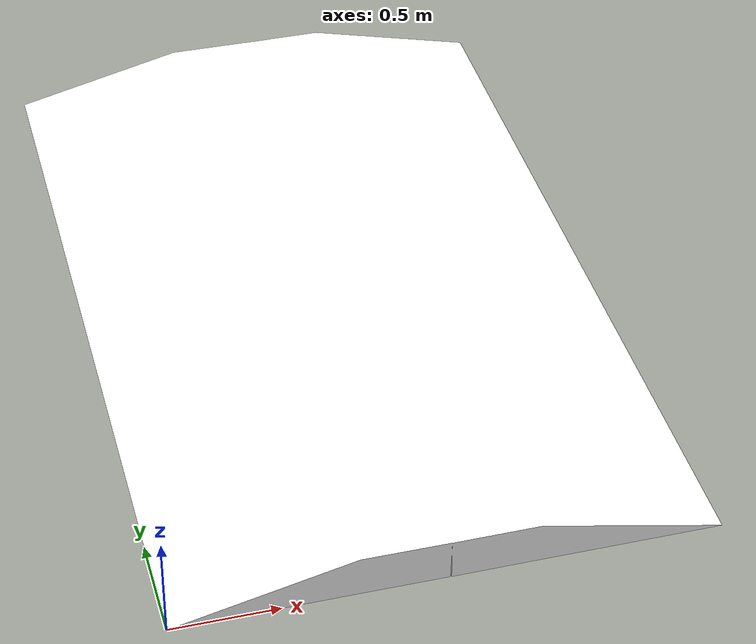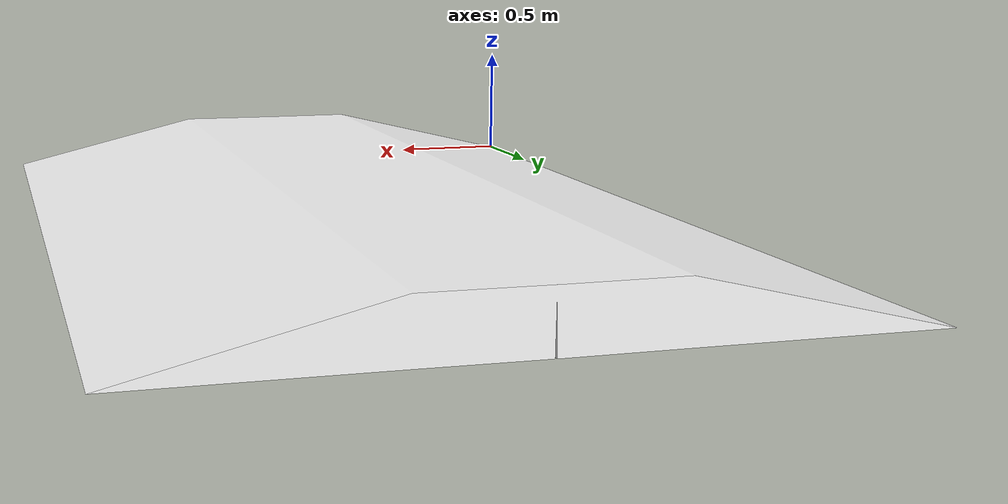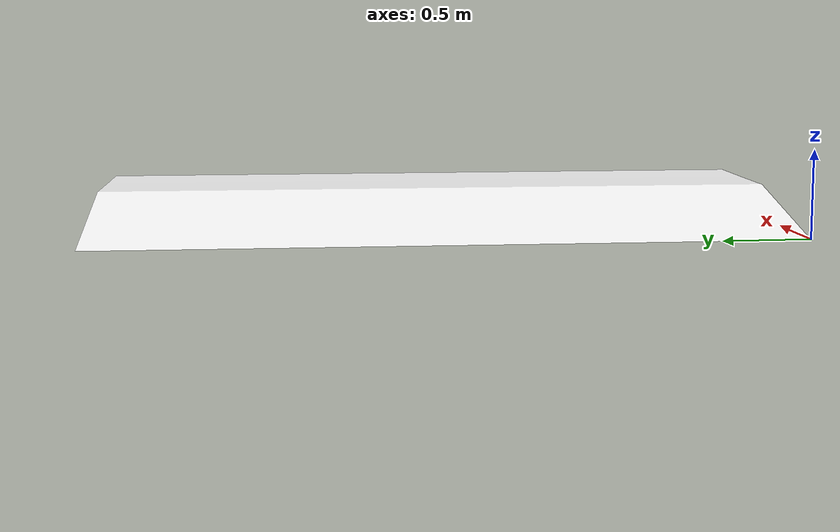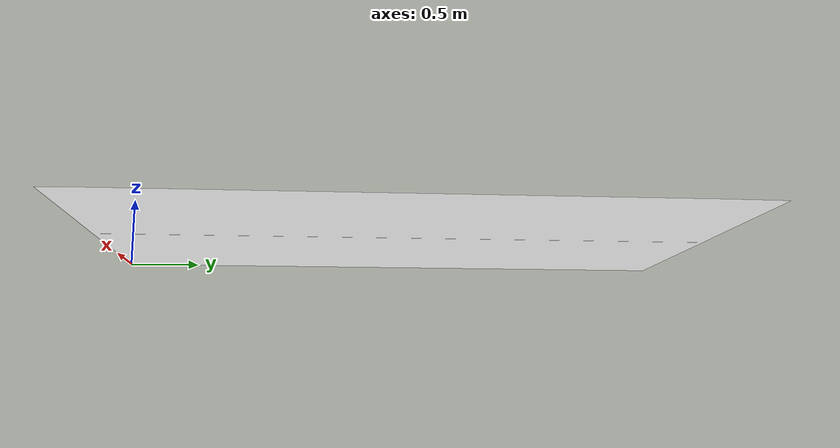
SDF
<?xml version="1.0" ?>
<sdf version="1.6">
  <model name="ramp_2">
    <static>true</static>
    <link name="link">
      <collision name="collision">
        <geometry>
          <mesh>
            <uri>model://ramp_2//ramp_020.dae</uri>
          </mesh>
        </geometry>
        <surface>
          <friction>
            <ode>
              <mu>0.9</mu>
              <mu2>0.6</mu2>
            </ode>
          </friction>
        </surface>
      </collision>
      <visual name="visual">
        <geometry>
          <mesh>
            <uri>model://ramp_2//ramp_020.dae</uri>
          </mesh>
        </geometry>

      </visual>
    </link>
  </model>
</sdf>
